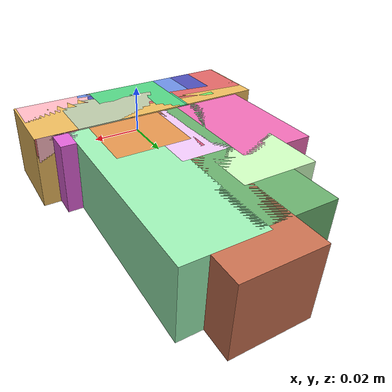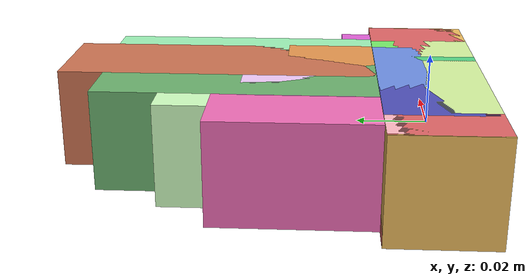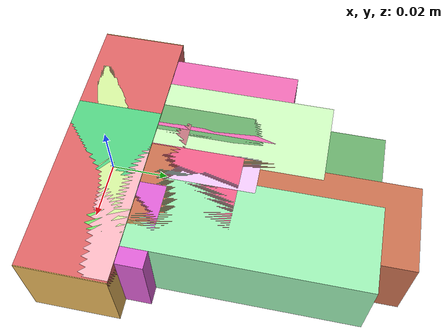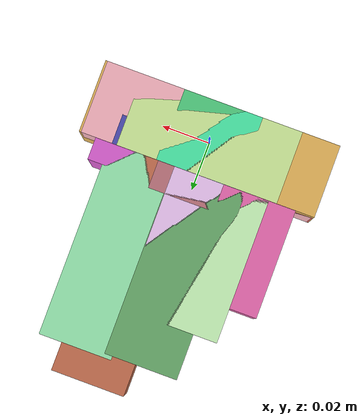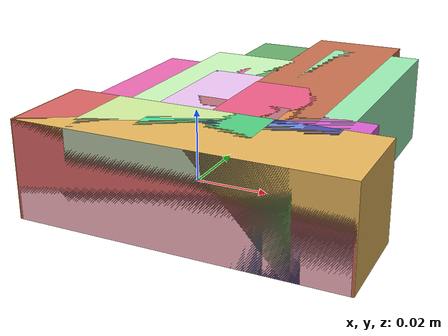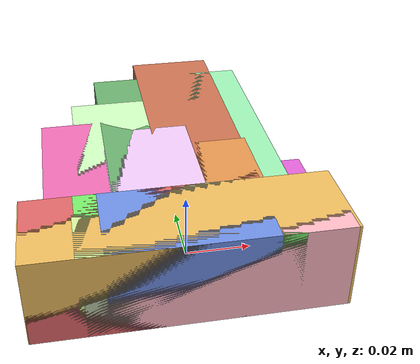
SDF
<sdf version="1.4"><world name="default"><model name="object0"><link name="link1"><pose>0 0 0 0 0 0</pose><inertial><pose>0 0 0 0 0 0</pose><mass>0.035377290825391386</mass><inertia><ixx>5.306593623808708e-06</ixx><ixy>0</ixy><iyy>1.530663016483453e-05</iyy><ixz>0</ixz><iyz>0</iyz><izz>1.530663016483453e-05</izz></inertia></inertial><visual name="link1_visual"><pose>0 0  0 0 0 0</pose><geometry><box><size>0.06551350152850258 0.03 0.03</size></box></geometry><material><diffuse>0.4645833944870298 0.9232867142943226 0.4118064471042556 1</diffuse></material></visual><collision><pose>0 0  0 0 0 0</pose><geometry><box><size>0.06551350152850258 0.03 0.03</size></box></geometry></collision></link><link name="link2"><pose>0.02724803851997734 0.0067075751879762105 0 0 0 0</pose><inertial><pose>0 0 0 0 0 0</pose><mass>0.018785030569200268</mass><inertia><ixx>3.2108969166568942e-06</ixx><ixy>0</ixy><iyy>2.7253948517481383e-06</iyy><ixz>0</ixz><iyz>0</iyz><izz>3.3032566502887957e-06</izz></inertia></inertial><visual name="link2_visual"><pose>0 0  0 0 0 0</pose><geometry><box><size>0.03 0.03478709364666716 0.028999999999999998</size></box></geometry><material><diffuse>0.8794182831751551 0.38299217815242165 0.8447111586965617 1</diffuse></material></visual><collision><pose>0 0  0 0 0 0</pose><geometry><box><size>0.03 0.03478709364666716 0.028999999999999998</size></box></geometry></collision></link><joint name="link_joint_0" type="fixed"><parent>link1</parent><child>link2</child><pose>0 0 0 0 0 0</pose><axis><xyz>0 0 1</xyz></axis></joint></model><model name="object1"><link name="link1"><pose>0 0 0 0 0 0</pose><inertial><pose>0 0 0 0 0 0</pose><mass>0.0531347276689235</mass><inertia><ixx>7.970209150338524e-06</ixx><ixy>0</ixy><iyy>4.6856400473418194e-05</iyy><ixz>0</ixz><iyz>0</iyz><izz>4.6856400473418194e-05</izz></inertia></inertial><visual name="link1_visual"><pose>0 0  0 0 0 0</pose><geometry><box><size>0.09839764383133982 0.03 0.03</size></box></geometry><material><diffuse>0.9240536419183747 0.7286933252361387 0.36287438304488945 1</diffuse></material></visual><collision><pose>0 0  0 0 0 0</pose><geometry><box><size>0.09839764383133982 0.03 0.03</size></box></geometry></collision></link><link name="link2"><pose>-0.02643401187707133 0.034746039578916685 0 0 0 0</pose><inertial><pose>0 0 0 0 0 0</pose><mass>0.027265551816692782</mass><inertia><ixx>7.70346834918877e-06</ixx><ixy>0</ixy><iyy>3.95577714273851e-06</iyy><ixz>0</ixz><iyz>0</iyz><izz>7.837523978954175e-06</izz></inertia></inertial><visual name="link2_visual"><pose>0 0  0 0 0 0</pose><geometry><box><size>0.03 0.05049176262350515 0.028999999999999998</size></box></geometry><material><diffuse>0.9360084209643633 0.4227840510388765 0.7099502636064894 1</diffuse></material></visual><collision><pose>0 0  0 0 0 0</pose><geometry><box><size>0.03 0.05049176262350515 0.028999999999999998</size></box></geometry></collision></link><joint name="link_joint_0" type="fixed"><parent>link1</parent><child>link2</child><pose>0 0 0 0 0 0</pose><axis><xyz>0 0 1</xyz></axis></joint></model><model name="object2"><link name="link1"><pose>0 0 0 0 0 0</pose><inertial><pose>0 0 0 0 0 0</pose><mass>0.05285543271295643</mass><inertia><ixx>7.928314906943464e-06</ixx><ixy>0</ixy><iyy>4.616296046645974e-05</iyy><ixz>0</ixz><iyz>0</iyz><izz>4.616296046645974e-05</izz></inertia></inertial><visual name="link1_visual"><pose>0 0  0 0 0 0</pose><geometry><box><size>0.09788043094991931 0.03 0.03</size></box></geometry><material><diffuse>0.8729252701851316 0.3952954259647928 0.398571007286401 1</diffuse></material></visual><collision><pose>0 0  0 0 0 0</pose><geometry><box><size>0.09788043094991931 0.03 0.03</size></box></geometry></collision></link><link name="link2"><pose>0.012922115216026993 0.017192255024683474 0 0 0 0</pose><inertial><pose>0 0 0 0 0 0</pose><mass>0.025444664338505327</mass><inertia><ixx>6.491083836437497e-06</ixx><ixy>0</ixy><iyy>3.6915967177781474e-06</iyy><ixz>0</ixz><iyz>0</iyz><izz>6.616186769435148e-06</izz></inertia></inertial><visual name="link2_visual"><pose>0 0  0 0 0 0</pose><geometry><box><size>0.03 0.047119748775009865 0.028999999999999998</size></box></geometry><material><diffuse>0.8930553903870846 0.5812956992498595 0.3049769696515656 1</diffuse></material></visual><collision><pose>0 0  0 0 0 0</pose><geometry><box><size>0.03 0.047119748775009865 0.028999999999999998</size></box></geometry></collision></link><joint name="link_joint_0" type="fixed"><parent>link1</parent><child>link2</child><pose>0 0 0 0 0 0</pose><axis><xyz>0 0 1</xyz></axis></joint></model><model name="object3"><link name="link1"><pose>0 0 0 0 0 0</pose><inertial><pose>0 0 0 0 0 0</pose><mass>0.02747317205017351</mass><inertia><ixx>4.120975807526026e-06</ixx><ixy>0</ixy><iyy>7.986433390725921e-06</iyy><ixz>0</ixz><iyz>0</iyz><izz>7.986433390725921e-06</izz></inertia></inertial><visual name="link1_visual"><pose>0 0  0 0 0 0</pose><geometry><box><size>0.05087624453735835 0.03 0.03</size></box></geometry><material><diffuse>0.4268168036686075 0.5586558732713084 0.8923694956355823 1</diffuse></material></visual><collision><pose>0 0  0 0 0 0</pose><geometry><box><size>0.05087624453735835 0.03 0.03</size></box></geometry></collision></link><link name="link2"><pose>-0.0058155216010444604 0.0248256162438944 0 0 0 0</pose><inertial><pose>0 0 0 0 0 0</pose><mass>0.03036138126232696</mass><inertia><ixx>1.0126092201527416e-05</ixx><ixy>0</ixy><iyy>4.4049303981426026e-06</iyy><ixz>0</ixz><iyz>0</iyz><izz>1.0275368992733858e-05</izz></inertia></inertial><visual name="link2_visual"><pose>0 0  0 0 0 0</pose><geometry><box><size>0.03 0.0562247801154203 0.028999999999999998</size></box></geometry><material><diffuse>0.9447146311072041 0.7925560382215995 0.9758470186664401 1</diffuse></material></visual><collision><pose>0 0  0 0 0 0</pose><geometry><box><size>0.03 0.0562247801154203 0.028999999999999998</size></box></geometry></collision></link><joint name="link_joint_0" type="fixed"><parent>link1</parent><child>link2</child><pose>0 0 0 0 0 0</pose><axis><xyz>0 0 1</xyz></axis></joint></model><model name="object4"><link name="link1"><pose>0 0 0 0 0 0</pose><inertial><pose>0 0 0 0 0 0</pose><mass>0.018162314197842748</mass><inertia><ixx>2.724347129676412e-06</ixx><ixy>0</ixy><iyy>3.0743353032792606e-06</iyy><ixz>0</ixz><iyz>0</iyz><izz>3.0743353032792606e-06</izz></inertia></inertial><visual name="link1_visual"><pose>0 0  0 0 0 0</pose><geometry><box><size>0.03363391518119028 0.03 0.03</size></box></geometry><material><diffuse>0.3020566418049422 0.9533478012867513 0.68207032566509 1</diffuse></material></visual><collision><pose>0 0  0 0 0 0</pose><geometry><box><size>0.03363391518119028 0.03 0.03</size></box></geometry></collision></link><link name="link2"><pose>0.011299125785709218 0.02245050590845033 0 0 0 0</pose><inertial><pose>0 0 0 0 0 0</pose><mass>0.02661652362686573</mass><inertia><ixx>7.254089879443565e-06</ixx><ixy>0</ixy><iyy>3.861613969531102e-06</iyy><ixz>0</ixz><iyz>0</iyz><izz>7.384954453942322e-06</izz></inertia></inertial><visual name="link2_visual"><pose>0 0  0 0 0 0</pose><geometry><box><size>0.03 0.049289858568269874 0.028999999999999998</size></box></geometry><material><diffuse>0.9455060103803379 0.37254309748788006 0.5413137424138311 1</diffuse></material></visual><collision><pose>0 0  0 0 0 0</pose><geometry><box><size>0.03 0.049289858568269874 0.028999999999999998</size></box></geometry></collision></link><joint name="link_joint_0" type="fixed"><parent>link1</parent><child>link2</child><pose>0 0 0 0 0 0</pose><axis><xyz>0 0 1</xyz></axis></joint></model><model name="object5"><link name="link1"><pose>0 0 0 0 0 0</pose><inertial><pose>0 0 0 0 0 0</pose><mass>0.03456203026188041</mass><inertia><ixx>5.18430453928206e-06</ixx><ixy>0</ixy><iyy>1.4390711379941204e-05</iyy><ixz>0</ixz><iyz>0</iyz><izz>1.4390711379941204e-05</izz></inertia></inertial><visual name="link1_visual"><pose>0 0  0 0 0 0</pose><geometry><box><size>0.06400375974422298 0.03 0.03</size></box></geometry><material><diffuse>0.7243298352429404 0.7781817514029483 0.6523988105309015 1</diffuse></material></visual><collision><pose>0 0  0 0 0 0</pose><geometry><box><size>0.06400375974422298 0.03 0.03</size></box></geometry></collision></link><link name="link2"><pose>-0.005534538570694407 0.05182247806837112 0 0 0 0</pose><inertial><pose>0 0 0 0 0 0</pose><mass>0.044626631544979256</mass><inertia><ixx>2.8526404003782635e-05</ixx><ixy>0</ixy><iyy>6.474580459984073e-06</iyy><ixz>0</ixz><iyz>0</iyz><izz>2.874581827554545e-05</izz></inertia></inertial><visual name="link2_visual"><pose>0 0  0 0 0 0</pose><geometry><box><size>0.03 0.0826419102684801 0.028999999999999998</size></box></geometry><material><diffuse>0.41605874594375325 0.6858501580080181 0.4285602359198258 1</diffuse></material></visual><collision><pose>0 0  0 0 0 0</pose><geometry><box><size>0.03 0.0826419102684801 0.028999999999999998</size></box></geometry></collision></link><joint name="link_joint_0" type="fixed"><parent>link1</parent><child>link2</child><pose>0 0 0 0 0 0</pose><axis><xyz>0 0 1</xyz></axis></joint></model><model name="object6"><link name="link1"><pose>0 0 0 0 0 0</pose><inertial><pose>0 0 0 0 0 0</pose><mass>0.0361756655095797</mass><inertia><ixx>5.426349826436955e-06</ixx><ixy>0</ixy><iyy>1.624264611409097e-05</iyy><ixz>0</ixz><iyz>0</iyz><izz>1.624264611409097e-05</izz></inertia></inertial><visual name="link1_visual"><pose>0 0  0 0 0 0</pose><geometry><box><size>0.06699197316588834 0.03 0.03</size></box></geometry><material><diffuse>0.8348163461061484 0.9521364500078031 0.622552461512609 1</diffuse></material></visual><collision><pose>0 0  0 0 0 0</pose><geometry><box><size>0.06699197316588834 0.03 0.03</size></box></geometry></collision></link><link name="link2"><pose>-0.015277063047084536 0.03987523224127256 0 0 0 0</pose><inertial><pose>0 0 0 0 0 0</pose><mass>0.037210876251460835</mass><inertia><ixx>1.7332374754882714e-05</ixx><ixy>0</ixy><iyy>5.3986779628161094e-06</iyy><ixz>0</ixz><iyz>0</iyz><izz>1.7515328229785732e-05</izz></inertia></inertial><visual name="link2_visual"><pose>0 0  0 0 0 0</pose><geometry><box><size>0.03 0.06890903009529784 0.028999999999999998</size></box></geometry><material><diffuse>0.8078830541377016 0.9931955504682939 0.750391122968705 1</diffuse></material></visual><collision><pose>0 0  0 0 0 0</pose><geometry><box><size>0.03 0.06890903009529784 0.028999999999999998</size></box></geometry></collision></link><joint name="link_joint_0" type="fixed"><parent>link1</parent><child>link2</child><pose>0 0 0 0 0 0</pose><axis><xyz>0 0 1</xyz></axis></joint></model><model name="object7"><link name="link1"><pose>0 0 0 0 0 0</pose><inertial><pose>0 0 0 0 0 0</pose><mass>0.052246762647962505</mass><inertia><ixx>7.837014397194376e-06</ixx><ixy>0</ixy><iyy>4.4676181166242866e-05</iyy><ixz>0</ixz><iyz>0</iyz><izz>4.4676181166242866e-05</izz></inertia></inertial><visual name="link1_visual"><pose>0 0  0 0 0 0</pose><geometry><box><size>0.09675326416289354 0.03 0.03</size></box></geometry><material><diffuse>0.9982273833870048 0.7253684879151523 0.7663580376307226 1</diffuse></material></visual><collision><pose>0 0  0 0 0 0</pose><geometry><box><size>0.09675326416289354 0.03 0.03</size></box></geometry></collision></link><link name="link2"><pose>0.021132713412066108 0.0432672494469496 0 0 0 0</pose><inertial><pose>0 0 0 0 0 0</pose><mass>0.05565163086554817</mass><inertia><ixx>5.31569074782716e-05</ixx><ixy>0</ixy><iyy>8.074124111409946e-06</iyy><ixz>0</ixz><iyz>0</iyz><izz>5.343052799669388e-05</izz></inertia></inertial><visual name="link2_visual"><pose>0 0  0 0 0 0</pose><geometry><box><size>0.03 0.10305857567694106 0.028999999999999998</size></box></geometry><material><diffuse>0.6130586697649204 0.9414930279579008 0.7102319443660664 1</diffuse></material></visual><collision><pose>0 0  0 0 0 0</pose><geometry><box><size>0.03 0.10305857567694106 0.028999999999999998</size></box></geometry></collision></link><joint name="link_joint_0" type="fixed"><parent>link1</parent><child>link2</child><pose>0 0 0 0 0 0</pose><axis><xyz>0 0 1</xyz></axis></joint></model><model name="object8"><link name="link1"><pose>0 0 0 0 0 0</pose><inertial><pose>0 0 0 0 0 0</pose><mass>0.038231662139973734</mass><inertia><ixx>5.73474932099606e-06</ixx><ixy>0</ixy><iyy>1.883722231156907e-05</iyy><ixz>0</ixz><iyz>0</iyz><izz>1.883722231156907e-05</izz></inertia></inertial><visual name="link1_visual"><pose>0 0  0 0 0 0</pose><geometry><box><size>0.0707993743332847 0.03 0.03</size></box></geometry><material><diffuse>0.30433800189458937 0.3069286173047309 0.715847399409753 1</diffuse></material></visual><collision><pose>0 0  0 0 0 0</pose><geometry><box><size>0.0707993743332847 0.03 0.03</size></box></geometry></collision></link><link name="link2"><pose>0.011633429191549575 0.057652968605591576 0 0 0 0</pose><inertial><pose>0 0 0 0 0 0</pose><mass>0.05257188797399755</mass><inertia><ixx>4.520772219026168e-05</ixx><ixy>0</ixy><iyy>7.627304746894143e-06</iyy><ixz>0</ixz><iyz>0</iyz><izz>4.5466200639467166e-05</izz></inertia></inertial><visual name="link2_visual"><pose>0 0  0 0 0 0</pose><geometry><box><size>0.03 0.09735534809999548 0.028999999999999998</size></box></geometry><material><diffuse>0.7921616334311079 0.4439876730075877 0.3162544517866296 1</diffuse></material></visual><collision><pose>0 0  0 0 0 0</pose><geometry><box><size>0.03 0.09735534809999548 0.028999999999999998</size></box></geometry></collision></link><joint name="link_joint_0" type="fixed"><parent>link1</parent><child>link2</child><pose>0 0 0 0 0 0</pose><axis><xyz>0 0 1</xyz></axis></joint></model><model name="object9"><link name="link1"><pose>0 0 0 0 0 0</pose><inertial><pose>0 0 0 0 0 0</pose><mass>0.01724855200214026</mass><inertia><ixx>2.5872828003210387e-06</ixx><ixy>0</ixy><iyy>2.760165355325031e-06</iyy><ixz>0</ixz><iyz>0</iyz><izz>2.760165355325031e-06</izz></inertia></inertial><visual name="link1_visual"><pose>0 0  0 0 0 0</pose><geometry><box><size>0.03194176296692641 0.03 0.03</size></box></geometry><material><diffuse>0.32631256847234225 0.8293116451425071 0.5157105072443995 1</diffuse></material></visual><collision><pose>0 0  0 0 0 0</pose><geometry><box><size>0.03194176296692641 0.03 0.03</size></box></geometry></collision></link><link name="link2"><pose>0.0009864906270909547 0.006659293254065488 0 0 0 0</pose><inertial><pose>0 0 0 0 0 0</pose><mass>0.021356598920180207</mass><inertia><ixx>4.280474200795542e-06</ixx><ixy>0</ixy><iyy>3.0984865600028117e-06</iyy><ixz>0</ixz><iyz>0</iyz><izz>4.3854774788197615e-06</izz></inertia></inertial><visual name="link2_visual"><pose>0 0  0 0 0 0</pose><geometry><box><size>0.03 0.03954925725959298 0.028999999999999998</size></box></geometry><material><diffuse>0.7568050774592496 0.4625523326832374 0.49849005109434913 1</diffuse></material></visual><collision><pose>0 0  0 0 0 0</pose><geometry><box><size>0.03 0.03954925725959298 0.028999999999999998</size></box></geometry></collision></link><joint name="link_joint_0" type="fixed"><parent>link1</parent><child>link2</child><pose>0 0 0 0 0 0</pose><axis><xyz>0 0 1</xyz></axis></joint></model></world></sdf>
